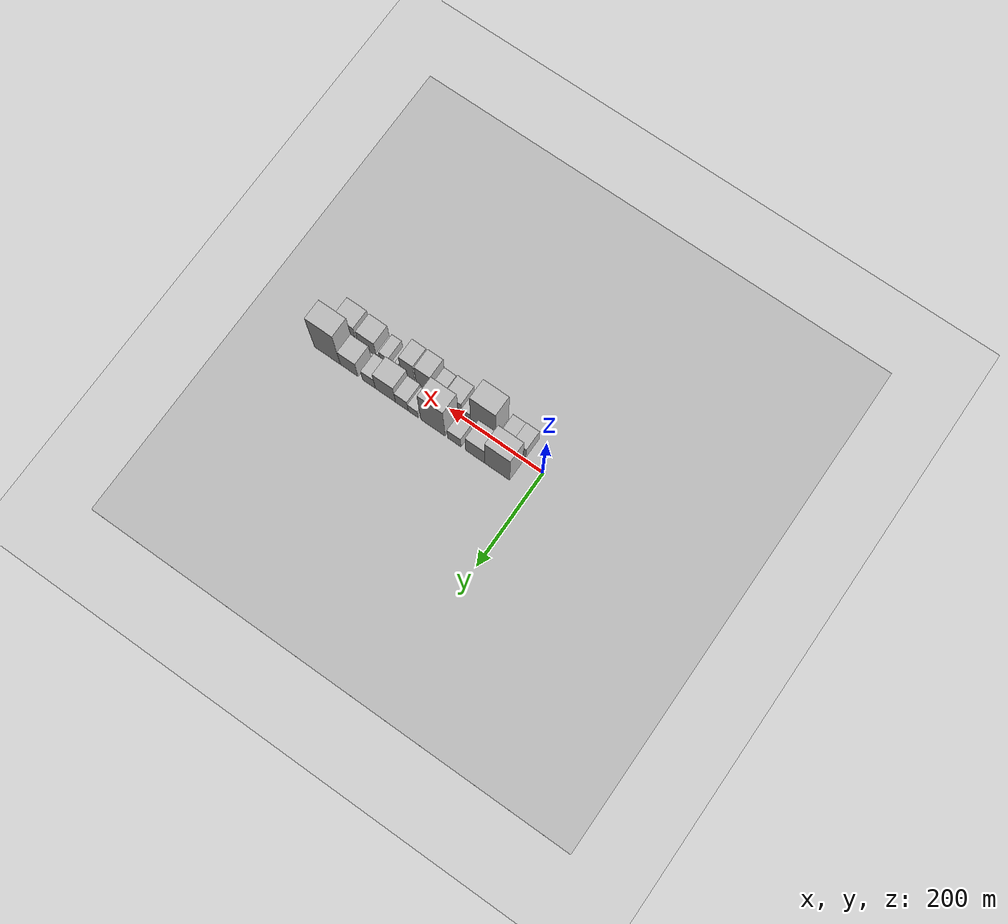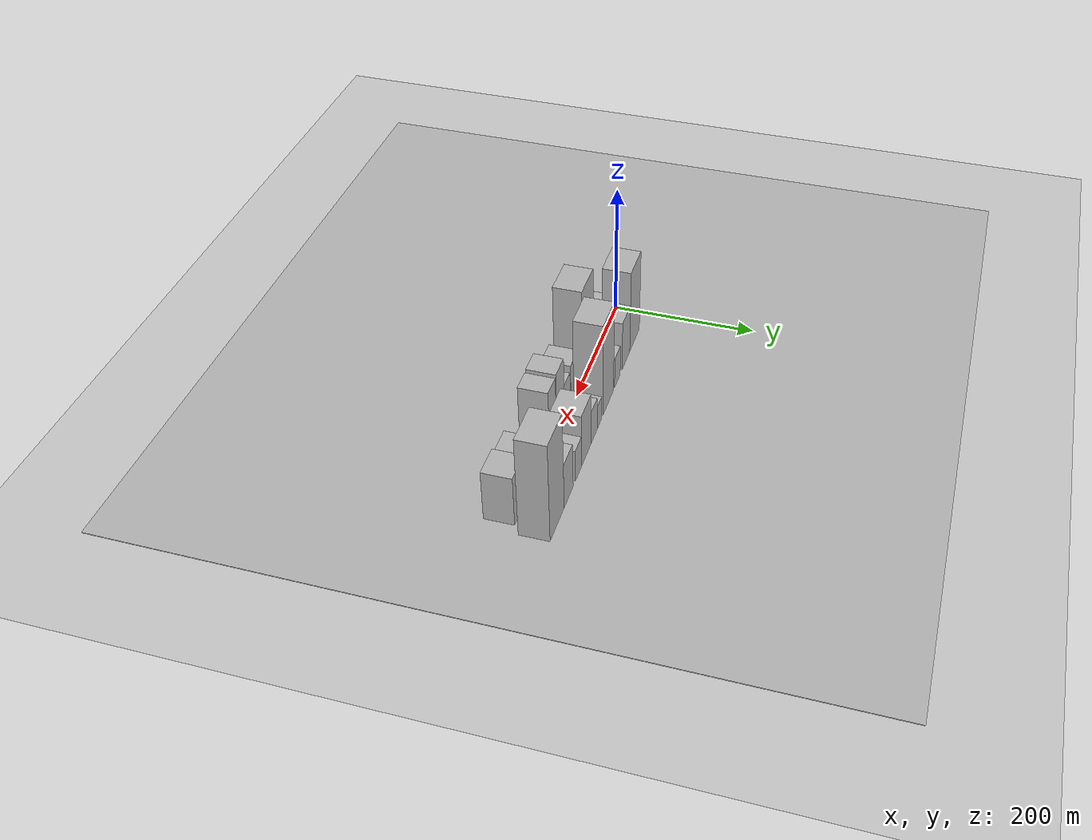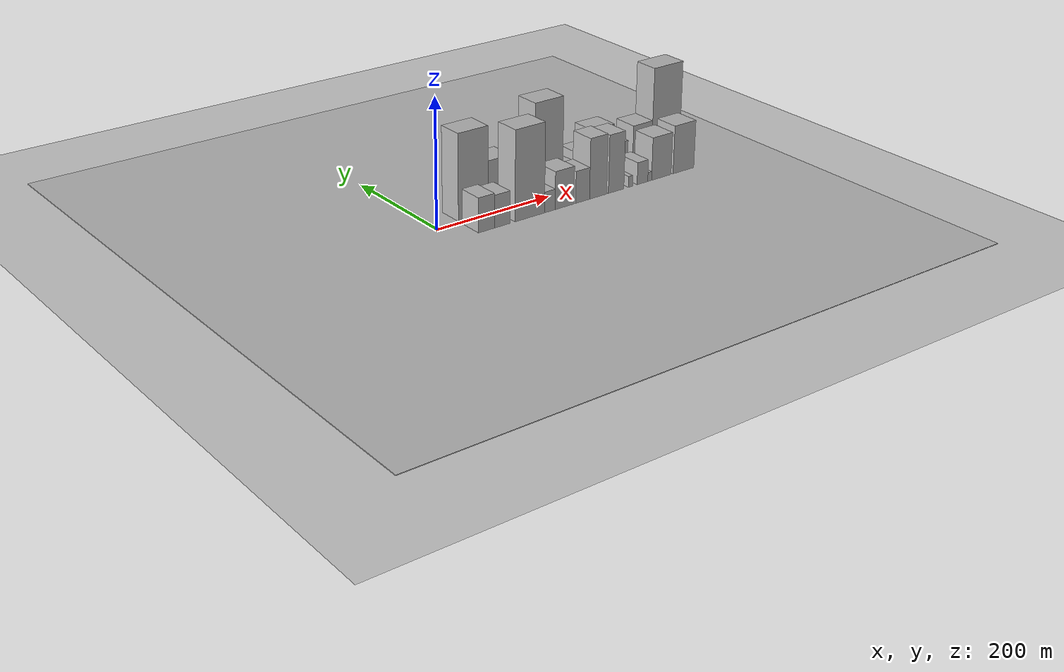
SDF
<?xml version="1.0" encoding="utf-8"?>

<sdf version="1.6">

   <world name="default">

      <gui fullscreen="0">

         <camera name="user_camera">

            <pose>-15 0 4.57585 0 0 0</pose>

            <view_controller>orbit</view_controller>

         </camera>

      </gui>

      <scene>

         <sky>

           <clouds>

             <speed>12</speed>

           </clouds>

         </sky>

         <ambient>0.4 0.4 0.4 1</ambient>

         <background>0.7 0.7 0.7 1</background>

         <shadows>1</shadows>

      </scene>

      <gravity>0 0 -9.8066</gravity>

      <magnetic_field>6e-06 2.3e-05 -4.2e-05</magnetic_field>

      <physics default="0" name="default_physics" type="ode">

         <ode>

            <solver>

               <type>quick</type>

               <iters>10</iters>

               <sor>1.0</sor>

               <use_dynamic_moi_rescaling>0</use_dynamic_moi_rescaling>

            </solver>

            <constraints>

               <cfm>0</cfm>

               <erp>0.2</erp>

               <contact_max_correcting_vel>100</contact_max_correcting_vel>

               <contact_surface_layer>0.001</contact_surface_layer>

            </constraints>

         </ode>

         <max_step_size>0.004</max_step_size>

         <real_time_factor>1</real_time_factor>

         <real_time_update_rate>250</real_time_update_rate>

      </physics>

      <light name="sun" type="directional">

         <cast_shadows>1</cast_shadows>

         <pose>0 0 10 0 0 0</pose>

         <diffuse>0.8 0.8 0.8 1</diffuse>

         <specular>0.2 0.2 0.2 1</specular>

         <attenuation>

            <range>1000</range>

            <constant>0.9</constant>

            <linear>0.01</linear>

            <quadratic>0.001</quadratic>

         </attenuation>

         <direction>-0.5 0.1 -0.9</direction>

      </light>

      <include>

         <name>ground_plane_1</name>

         <uri>model://HANNAS_ground_plane</uri>

         <pose>0 0 0  0 0 0</pose>

      </include>

      <include>

         <name>ground_plane_2</name>

         <uri>model://HANNAS_ground_plane</uri>

         <pose>100 0 0  0 0 0</pose>

      </include>

      <model name="building_1">

         <static>1</static>

         <pose frame="">66.1630 24.5000 0 0.000000 0.000000 1.570796</pose>

         <link name="link">

            <pose frame="">0 0 67.50 0 0 0</pose>

            <collision name="collision">

               <geometry>

                  <box>

                     <size>40.0000 52.3259 135.0000</size>

                  </box>

               </geometry>

               <max_contacts>10</max_contacts>

               <surface>

                  <contact>

                     <ode/>

                  </contact>

                  <bounce/>

                  <friction>

                     <torsional>

                        <ode/>

                     </torsional>

                     <ode/>

                  </friction>

               </surface>

            </collision>

            <visual name="visual">

               <cast_shadows>0</cast_shadows>

               <geometry>

                  <box>

                     <size>40.0000 52.3259 135.0000</size>

                  </box>

               </geometry>

               <material>

                  <script>

                     <uri>model://HANNAS_wall/materials/scripts</uri>

                     <uri>model://HANNAS_wall/materials/textures</uri>

                     <name>vrc/HANNAS_wall</name>

                  </script>

               </material>

            </visual>

            <self_collide>0</self_collide>

            <enable_wind>0</enable_wind>

            <kinematic>0</kinematic>

         </link>

      </model>

      <model name="building_2">

         <static>1</static>

         <pose frame="">112.6693 24.5000 0 0.000000 0.000000 1.570796</pose>

         <link name="link">

            <pose frame="">0 0 40.50 0 0 0</pose>

            <collision name="collision">

               <geometry>

                  <box>

                     <size>40.0000 40.6868 81.0000</size>

                  </box>

               </geometry>

               <max_contacts>10</max_contacts>

               <surface>

                  <contact>

                     <ode/>

                  </contact>

                  <bounce/>

                  <friction>

                     <torsional>

                        <ode/>

                     </torsional>

                     <ode/>

                  </friction>

               </surface>

            </collision>

            <visual name="visual">

               <cast_shadows>0</cast_shadows>

               <geometry>

                  <box>

                     <size>40.0000 40.6868 81.0000</size>

                  </box>

               </geometry>

               <material>

                  <script>

                     <uri>model://HANNAS_wall/materials/scripts</uri>

                     <uri>model://HANNAS_wall/materials/textures</uri>

                     <name>vrc/HANNAS_wall</name>

                  </script>

               </material>

            </visual>

            <self_collide>0</self_collide>

            <enable_wind>0</enable_wind>

            <kinematic>0</kinematic>

         </link>

      </model>

      <model name="building_3">

         <static>1</static>

         <pose frame="">157.3690 24.5000 0 0.000000 0.000000 1.570796</pose>

         <link name="link">

            <pose frame="">0 0 25.50 0 0 0</pose>

            <collision name="collision">

               <geometry>

                  <box>

                     <size>40.0000 28.7124 51.0000</size>

                  </box>

               </geometry>

               <max_contacts>10</max_contacts>

               <surface>

                  <contact>

                     <ode/>

                  </contact>

                  <bounce/>

                  <friction>

                     <torsional>

                        <ode/>

                     </torsional>

                     <ode/>

                  </friction>

               </surface>

            </collision>

            <visual name="visual">

               <cast_shadows>0</cast_shadows>

               <geometry>

                  <box>

                     <size>40.0000 28.7124 51.0000</size>

                  </box>

               </geometry>

               <material>

                  <script>

                     <uri>model://HANNAS_wall/materials/scripts</uri>

                     <uri>model://HANNAS_wall/materials/textures</uri>

                     <name>vrc/HANNAS_wall</name>

                  </script>

               </material>

            </visual>

            <self_collide>0</self_collide>

            <enable_wind>0</enable_wind>

            <kinematic>0</kinematic>

         </link>

      </model>

      <model name="building_4">

         <static>1</static>

         <pose frame="">202.8504 24.5000 0 0.000000 0.000000 1.570796</pose>

         <link name="link">

            <pose frame="">0 0 75.00 0 0 0</pose>

            <collision name="collision">

               <geometry>

                  <box>

                     <size>40.0000 52.2504 150.0000</size>

                  </box>

               </geometry>

               <max_contacts>10</max_contacts>

               <surface>

                  <contact>

                     <ode/>

                  </contact>

                  <bounce/>

                  <friction>

                     <torsional>

                        <ode/>

                     </torsional>

                     <ode/>

                  </friction>

               </surface>

            </collision>

            <visual name="visual">

               <cast_shadows>0</cast_shadows>

               <geometry>

                  <box>

                     <size>40.0000 52.2504 150.0000</size>

                  </box>

               </geometry>

               <material>

                  <script>

                     <uri>model://HANNAS_wall/materials/scripts</uri>

                     <uri>model://HANNAS_wall/materials/textures</uri>

                     <name>vrc/HANNAS_wall</name>

                  </script>

               </material>

            </visual>

            <self_collide>0</self_collide>

            <enable_wind>0</enable_wind>

            <kinematic>0</kinematic>

         </link>

      </model>

      <model name="building_5">

         <static>1</static>

         <pose frame="">245.6008 24.5000 0 0.000000 0.000000 1.570796</pose>

         <link name="link">

            <pose frame="">0 0 19.50 0 0 0</pose>

            <collision name="collision">

               <geometry>

                  <box>

                     <size>40.0000 21.2503 39.0000</size>

                  </box>

               </geometry>

               <max_contacts>10</max_contacts>

               <surface>

                  <contact>

                     <ode/>

                  </contact>

                  <bounce/>

                  <friction>

                     <torsional>

                        <ode/>

                     </torsional>

                     <ode/>

                  </friction>

               </surface>

            </collision>

            <visual name="visual">

               <cast_shadows>0</cast_shadows>

               <geometry>

                  <box>

                     <size>40.0000 21.2503 39.0000</size>

                  </box>

               </geometry>

               <material>

                  <script>

                     <uri>model://HANNAS_wall/materials/scripts</uri>

                     <uri>model://HANNAS_wall/materials/textures</uri>

                     <name>vrc/HANNAS_wall</name>

                  </script>

               </material>

            </visual>

            <self_collide>0</self_collide>

            <enable_wind>0</enable_wind>

            <kinematic>0</kinematic>

         </link>

      </model>

      <model name="building_6">

         <static>1</static>

         <pose frame="">269.9380 24.5000 0 0.000000 0.000000 1.570796</pose>

         <link name="link">

            <pose frame="">0 0 27.00 0 0 0</pose>

            <collision name="collision">

               <geometry>

                  <box>

                     <size>40.0000 27.4241 54.0000</size>

                  </box>

               </geometry>

               <max_contacts>10</max_contacts>

               <surface>

                  <contact>

                     <ode/>

                  </contact>

                  <bounce/>

                  <friction>

                     <torsional>

                        <ode/>

                     </torsional>

                     <ode/>

                  </friction>

               </surface>

            </collision>

            <visual name="visual">

               <cast_shadows>0</cast_shadows>

               <geometry>

                  <box>

                     <size>40.0000 27.4241 54.0000</size>

                  </box>

               </geometry>

               <material>

                  <script>

                     <uri>model://HANNAS_wall/materials/scripts</uri>

                     <uri>model://HANNAS_wall/materials/textures</uri>

                     <name>vrc/HANNAS_wall</name>

                  </script>

               </material>

            </visual>

            <self_collide>0</self_collide>

            <enable_wind>0</enable_wind>

            <kinematic>0</kinematic>

         </link>

      </model>

      <model name="building_7">

         <static>1</static>

         <pose frame="">305.5247 24.5000 0 0.000000 0.000000 1.570796</pose>

         <link name="link">

            <pose frame="">0 0 42.00 0 0 0</pose>

            <collision name="collision">

               <geometry>

                  <box>

                     <size>40.0000 43.7491 84.0000</size>

                  </box>

               </geometry>

               <max_contacts>10</max_contacts>

               <surface>

                  <contact>

                     <ode/>

                  </contact>

                  <bounce/>

                  <friction>

                     <torsional>

                        <ode/>

                     </torsional>

                     <ode/>

                  </friction>

               </surface>

            </collision>

            <visual name="visual">

               <cast_shadows>0</cast_shadows>

               <geometry>

                  <box>

                     <size>40.0000 43.7491 84.0000</size>

                  </box>

               </geometry>

               <material>

                  <script>

                     <uri>model://HANNAS_wall/materials/scripts</uri>

                     <uri>model://HANNAS_wall/materials/textures</uri>

                     <name>vrc/HANNAS_wall</name>

                  </script>

               </material>

            </visual>

            <self_collide>0</self_collide>

            <enable_wind>0</enable_wind>

            <kinematic>0</kinematic>

         </link>

      </model>

      <model name="building_8">

         <static>1</static>

         <pose frame="">341.2905 24.5000 0 0.000000 0.000000 1.570796</pose>

         <link name="link">

            <pose frame="">0 0 25.50 0 0 0</pose>

            <collision name="collision">

               <geometry>

                  <box>

                     <size>40.0000 27.7826 51.0000</size>

                  </box>

               </geometry>

               <max_contacts>10</max_contacts>

               <surface>

                  <contact>

                     <ode/>

                  </contact>

                  <bounce/>

                  <friction>

                     <torsional>

                        <ode/>

                     </torsional>

                     <ode/>

                  </friction>

               </surface>

            </collision>

            <visual name="visual">

               <cast_shadows>0</cast_shadows>

               <geometry>

                  <box>

                     <size>40.0000 27.7826 51.0000</size>

                  </box>

               </geometry>

               <material>

                  <script>

                     <uri>model://HANNAS_wall/materials/scripts</uri>

                     <uri>model://HANNAS_wall/materials/textures</uri>

                     <name>vrc/HANNAS_wall</name>

                  </script>

               </material>

            </visual>

            <self_collide>0</self_collide>

            <enable_wind>0</enable_wind>

            <kinematic>0</kinematic>

         </link>

      </model>

      <model name="building_9">

         <static>1</static>

         <pose frame="">384.2529 24.5000 0 0.000000 0.000000 1.570796</pose>

         <link name="link">

            <pose frame="">0 0 36.00 0 0 0</pose>

            <collision name="collision">

               <geometry>

                  <box>

                     <size>40.0000 38.1422 72.0000</size>

                  </box>

               </geometry>

               <max_contacts>10</max_contacts>

               <surface>

                  <contact>

                     <ode/>

                  </contact>

                  <bounce/>

                  <friction>

                     <torsional>

                        <ode/>

                     </torsional>

                     <ode/>

                  </friction>

               </surface>

            </collision>

            <visual name="visual">

               <cast_shadows>0</cast_shadows>

               <geometry>

                  <box>

                     <size>40.0000 38.1422 72.0000</size>

                  </box>

               </geometry>

               <material>

                  <script>

                     <uri>model://HANNAS_wall/materials/scripts</uri>

                     <uri>model://HANNAS_wall/materials/textures</uri>

                     <name>vrc/HANNAS_wall</name>

                  </script>

               </material>

            </visual>

            <self_collide>0</self_collide>

            <enable_wind>0</enable_wind>

            <kinematic>0</kinematic>

         </link>

      </model>

      <model name="building_10">

         <static>1</static>

         <pose frame="">431.9406 24.5000 0 0.000000 0.000000 1.570796</pose>

         <link name="link">

            <pose frame="">0 0 78.00 0 0 0</pose>

            <collision name="collision">

               <geometry>

                  <box>

                     <size>40.0000 57.2332 156.0000</size>

                  </box>

               </geometry>

               <max_contacts>10</max_contacts>

               <surface>

                  <contact>

                     <ode/>

                  </contact>

                  <bounce/>

                  <friction>

                     <torsional>

                        <ode/>

                     </torsional>

                     <ode/>

                  </friction>

               </surface>

            </collision>

            <visual name="visual">

               <cast_shadows>0</cast_shadows>

               <geometry>

                  <box>

                     <size>40.0000 57.2332 156.0000</size>

                  </box>

               </geometry>

               <material>

                  <script>

                     <uri>model://HANNAS_wall/materials/scripts</uri>

                     <uri>model://HANNAS_wall/materials/textures</uri>

                     <name>vrc/HANNAS_wall</name>

                  </script>

               </material>

            </visual>

            <self_collide>0</self_collide>

            <enable_wind>0</enable_wind>

            <kinematic>0</kinematic>

         </link>

      </model>

      <model name="building_11">

         <static>1</static>

         <pose frame="">53.9799 -24.5000 0 0.000000 0.000000 1.570796</pose>

         <link name="link">

            <pose frame="">0 0 27.00 0 0 0</pose>

            <collision name="collision">

               <geometry>

                  <box>

                     <size>40.0000 27.9597 54.0000</size>

                  </box>

               </geometry>

               <max_contacts>10</max_contacts>

               <surface>

                  <contact>

                     <ode/>

                  </contact>

                  <bounce/>

                  <friction>

                     <torsional>

                        <ode/>

                     </torsional>

                     <ode/>

                  </friction>

               </surface>

            </collision>

            <visual name="visual">

               <cast_shadows>0</cast_shadows>

               <geometry>

                  <box>

                     <size>40.0000 27.9597 54.0000</size>

                  </box>

               </geometry>

               <material>

                  <script>

                     <uri>model://HANNAS_wall/materials/scripts</uri>

                     <uri>model://HANNAS_wall/materials/textures</uri>

                     <name>vrc/HANNAS_wall</name>

                  </script>

               </material>

            </visual>

            <self_collide>0</self_collide>

            <enable_wind>0</enable_wind>

            <kinematic>0</kinematic>

         </link>

      </model>

      <model name="building_12">

         <static>1</static>

         <pose frame="">81.5833 -24.5000 0 0.000000 0.000000 1.570796</pose>

         <link name="link">

            <pose frame="">0 0 25.50 0 0 0</pose>

            <collision name="collision">

               <geometry>

                  <box>

                     <size>40.0000 27.2472 51.0000</size>

                  </box>

               </geometry>

               <max_contacts>10</max_contacts>

               <surface>

                  <contact>

                     <ode/>

                  </contact>

                  <bounce/>

                  <friction>

                     <torsional>

                        <ode/>

                     </torsional>

                     <ode/>

                  </friction>

               </surface>

            </collision>

            <visual name="visual">

               <cast_shadows>0</cast_shadows>

               <geometry>

                  <box>

                     <size>40.0000 27.2472 51.0000</size>

                  </box>

               </geometry>

               <material>

                  <script>

                     <uri>model://HANNAS_wall/materials/scripts</uri>

                     <uri>model://HANNAS_wall/materials/textures</uri>

                     <name>vrc/HANNAS_wall</name>

                  </script>

               </material>

            </visual>

            <self_collide>0</self_collide>

            <enable_wind>0</enable_wind>

            <kinematic>0</kinematic>

         </link>

      </model>

      <model name="building_13">

         <static>1</static>

         <pose frame="">130.8070 -24.5000 0 0.000000 0.000000 1.570796</pose>

         <link name="link">

            <pose frame="">0 0 70.50 0 0 0</pose>

            <collision name="collision">

               <geometry>

                  <box>

                     <size>40.0000 53.2002 141.0000</size>

                  </box>

               </geometry>

               <max_contacts>10</max_contacts>

               <surface>

                  <contact>

                     <ode/>

                  </contact>

                  <bounce/>

                  <friction>

                     <torsional>

                        <ode/>

                     </torsional>

                     <ode/>

                  </friction>

               </surface>

            </collision>

            <visual name="visual">

               <cast_shadows>0</cast_shadows>

               <geometry>

                  <box>

                     <size>40.0000 53.2002 141.0000</size>

                  </box>

               </geometry>

               <material>

                  <script>

                     <uri>model://HANNAS_wall/materials/scripts</uri>

                     <uri>model://HANNAS_wall/materials/textures</uri>

                     <name>vrc/HANNAS_wall</name>

                  </script>

               </material>

            </visual>

            <self_collide>0</self_collide>

            <enable_wind>0</enable_wind>

            <kinematic>0</kinematic>

         </link>

      </model>

      <model name="building_14">

         <static>1</static>

         <pose frame="">167.0720 -24.5000 0 0.000000 0.000000 1.570796</pose>

         <link name="link">

            <pose frame="">0 0 16.50 0 0 0</pose>

            <collision name="collision">

               <geometry>

                  <box>

                     <size>40.0000 19.3299 33.0000</size>

                  </box>

               </geometry>

               <max_contacts>10</max_contacts>

               <surface>

                  <contact>

                     <ode/>

                  </contact>

                  <bounce/>

                  <friction>

                     <torsional>

                        <ode/>

                     </torsional>

                     <ode/>

                  </friction>

               </surface>

            </collision>

            <visual name="visual">

               <cast_shadows>0</cast_shadows>

               <geometry>

                  <box>

                     <size>40.0000 19.3299 33.0000</size>

                  </box>

               </geometry>

               <material>

                  <script>

                     <uri>model://HANNAS_wall/materials/scripts</uri>

                     <uri>model://HANNAS_wall/materials/textures</uri>

                     <name>vrc/HANNAS_wall</name>

                  </script>

               </material>

            </visual>

            <self_collide>0</self_collide>

            <enable_wind>0</enable_wind>

            <kinematic>0</kinematic>

         </link>

      </model>

      <model name="building_15">

         <static>1</static>

         <pose frame="">194.2468 -24.5000 0 0.000000 0.000000 1.570796</pose>

         <link name="link">

            <pose frame="">0 0 30.00 0 0 0</pose>

            <collision name="collision">

               <geometry>

                  <box>

                     <size>40.0000 35.0196 60.0000</size>

                  </box>

               </geometry>

               <max_contacts>10</max_contacts>

               <surface>

                  <contact>

                     <ode/>

                  </contact>

                  <bounce/>

                  <friction>

                     <torsional>

                        <ode/>

                     </torsional>

                     <ode/>

                  </friction>

               </surface>

            </collision>

            <visual name="visual">

               <cast_shadows>0</cast_shadows>

               <geometry>

                  <box>

                     <size>40.0000 35.0196 60.0000</size>

                  </box>

               </geometry>

               <material>

                  <script>

                     <uri>model://HANNAS_wall/materials/scripts</uri>

                     <uri>model://HANNAS_wall/materials/textures</uri>

                     <name>vrc/HANNAS_wall</name>

                  </script>

               </material>

            </visual>

            <self_collide>0</self_collide>

            <enable_wind>0</enable_wind>

            <kinematic>0</kinematic>

         </link>

      </model>

      <model name="building_16">

         <static>1</static>

         <pose frame="">227.8374 -24.5000 0 0.000000 0.000000 1.570796</pose>

         <link name="link">

            <pose frame="">0 0 25.50 0 0 0</pose>

            <collision name="collision">

               <geometry>

                  <box>

                     <size>40.0000 26.1618 51.0000</size>

                  </box>

               </geometry>

               <max_contacts>10</max_contacts>

               <surface>

                  <contact>

                     <ode/>

                  </contact>

                  <bounce/>

                  <friction>

                     <torsional>

                        <ode/>

                     </torsional>

                     <ode/>

                  </friction>

               </surface>

            </collision>

            <visual name="visual">

               <cast_shadows>0</cast_shadows>

               <geometry>

                  <box>

                     <size>40.0000 26.1618 51.0000</size>

                  </box>

               </geometry>

               <material>

                  <script>

                     <uri>model://HANNAS_wall/materials/scripts</uri>

                     <uri>model://HANNAS_wall/materials/textures</uri>

                     <name>vrc/HANNAS_wall</name>

                  </script>

               </material>

            </visual>

            <self_collide>0</self_collide>

            <enable_wind>0</enable_wind>

            <kinematic>0</kinematic>

         </link>

      </model>

      <model name="building_17">

         <static>1</static>

         <pose frame="">257.3687 -24.5000 0 0.000000 0.000000 1.570796</pose>

         <link name="link">

            <pose frame="">0 0 48.00 0 0 0</pose>

            <collision name="collision">

               <geometry>

                  <box>

                     <size>40.0000 32.9008 96.0000</size>

                  </box>

               </geometry>

               <max_contacts>10</max_contacts>

               <surface>

                  <contact>

                     <ode/>

                  </contact>

                  <bounce/>

                  <friction>

                     <torsional>

                        <ode/>

                     </torsional>

                     <ode/>

                  </friction>

               </surface>

            </collision>

            <visual name="visual">

               <cast_shadows>0</cast_shadows>

               <geometry>

                  <box>

                     <size>40.0000 32.9008 96.0000</size>

                  </box>

               </geometry>

               <material>

                  <script>

                     <uri>model://HANNAS_wall/materials/scripts</uri>

                     <uri>model://HANNAS_wall/materials/textures</uri>

                     <name>vrc/HANNAS_wall</name>

                  </script>

               </material>

            </visual>

            <self_collide>0</self_collide>

            <enable_wind>0</enable_wind>

            <kinematic>0</kinematic>

         </link>

      </model>

      <model name="building_18">

         <static>1</static>

         <pose frame="">291.8388 -24.5000 0 0.000000 0.000000 1.570796</pose>

         <link name="link">

            <pose frame="">0 0 46.50 0 0 0</pose>

            <collision name="collision">

               <geometry>

                  <box>

                     <size>40.0000 30.0394 93.0000</size>

                  </box>

               </geometry>

               <max_contacts>10</max_contacts>

               <surface>

                  <contact>

                     <ode/>

                  </contact>

                  <bounce/>

                  <friction>

                     <torsional>

                        <ode/>

                     </torsional>

                     <ode/>

                  </friction>

               </surface>

            </collision>

            <visual name="visual">

               <cast_shadows>0</cast_shadows>

               <geometry>

                  <box>

                     <size>40.0000 30.0394 93.0000</size>

                  </box>

               </geometry>

               <material>

                  <script>

                     <uri>model://HANNAS_wall/materials/scripts</uri>

                     <uri>model://HANNAS_wall/materials/textures</uri>

                     <name>vrc/HANNAS_wall</name>

                  </script>

               </material>

            </visual>

            <self_collide>0</self_collide>

            <enable_wind>0</enable_wind>

            <kinematic>0</kinematic>

         </link>

      </model>

      <model name="building_19">

         <static>1</static>

         <pose frame="">319.8371 -24.5000 0 0.000000 0.000000 1.570796</pose>

         <link name="link">

            <pose frame="">0 0 9.00 0 0 0</pose>

            <collision name="collision">

               <geometry>

                  <box>

                     <size>40.0000 7.9570 18.0000</size>

                  </box>

               </geometry>

               <max_contacts>10</max_contacts>

               <surface>

                  <contact>

                     <ode/>

                  </contact>

                  <bounce/>

                  <friction>

                     <torsional>

                        <ode/>

                     </torsional>

                     <ode/>

                  </friction>

               </surface>

            </collision>

            <visual name="visual">

               <cast_shadows>0</cast_shadows>

               <geometry>

                  <box>

                     <size>40.0000 7.9570 18.0000</size>

                  </box>

               </geometry>

               <material>

                  <script>

                     <uri>model://HANNAS_wall/materials/scripts</uri>

                     <uri>model://HANNAS_wall/materials/textures</uri>

                     <name>vrc/HANNAS_wall</name>

                  </script>

               </material>

            </visual>

            <self_collide>0</self_collide>

            <enable_wind>0</enable_wind>

            <kinematic>0</kinematic>

         </link>

      </model>

      <model name="building_20">

         <static>1</static>

         <pose frame="">343.3180 -24.5000 0 0.000000 0.000000 1.570796</pose>

         <link name="link">

            <pose frame="">0 0 18.00 0 0 0</pose>

            <collision name="collision">

               <geometry>

                  <box>

                     <size>40.0000 21.0048 36.0000</size>

                  </box>

               </geometry>

               <max_contacts>10</max_contacts>

               <surface>

                  <contact>

                     <ode/>

                  </contact>

                  <bounce/>

                  <friction>

                     <torsional>

                        <ode/>

                     </torsional>

                     <ode/>

                  </friction>

               </surface>

            </collision>

            <visual name="visual">

               <cast_shadows>0</cast_shadows>

               <geometry>

                  <box>

                     <size>40.0000 21.0048 36.0000</size>

                  </box>

               </geometry>

               <material>

                  <script>

                     <uri>model://HANNAS_wall/materials/scripts</uri>

                     <uri>model://HANNAS_wall/materials/textures</uri>

                     <name>vrc/HANNAS_wall</name>

                  </script>

               </material>

            </visual>

            <self_collide>0</self_collide>

            <enable_wind>0</enable_wind>

            <kinematic>0</kinematic>

         </link>

      </model>

      <model name="building_21">

         <static>1</static>

         <pose frame="">357.5585 -24.5000 0 0.000000 0.000000 1.570796</pose>

         <link name="link">

            <pose frame="">0 0 7.50 0 0 0</pose>

            <collision name="collision">

               <geometry>

                  <box>

                     <size>40.0000 7.4762 15.0000</size>

                  </box>

               </geometry>

               <max_contacts>10</max_contacts>

               <surface>

                  <contact>

                     <ode/>

                  </contact>

                  <bounce/>

                  <friction>

                     <torsional>

                        <ode/>

                     </torsional>

                     <ode/>

                  </friction>

               </surface>

            </collision>

            <visual name="visual">

               <cast_shadows>0</cast_shadows>

               <geometry>

                  <box>

                     <size>40.0000 7.4762 15.0000</size>

                  </box>

               </geometry>

               <material>

                  <script>

                     <uri>model://HANNAS_wall/materials/scripts</uri>

                     <uri>model://HANNAS_wall/materials/textures</uri>

                     <name>vrc/HANNAS_wall</name>

                  </script>

               </material>

            </visual>

            <self_collide>0</self_collide>

            <enable_wind>0</enable_wind>

            <kinematic>0</kinematic>

         </link>

      </model>

      <model name="building_22">

         <static>1</static>

         <pose frame="">380.8892 -24.5000 0 0.000000 0.000000 1.570796</pose>

         <link name="link">

            <pose frame="">0 0 34.50 0 0 0</pose>

            <collision name="collision">

               <geometry>

                  <box>

                     <size>40.0000 39.1854 69.0000</size>

                  </box>

               </geometry>

               <max_contacts>10</max_contacts>

               <surface>

                  <contact>

                     <ode/>

                  </contact>

                  <bounce/>

                  <friction>

                     <torsional>

                        <ode/>

                     </torsional>

                     <ode/>

                  </friction>

               </surface>

            </collision>

            <visual name="visual">

               <cast_shadows>0</cast_shadows>

               <geometry>

                  <box>

                     <size>40.0000 39.1854 69.0000</size>

                  </box>

               </geometry>

               <material>

                  <script>

                     <uri>model://HANNAS_wall/materials/scripts</uri>

                     <uri>model://HANNAS_wall/materials/textures</uri>

                     <name>vrc/HANNAS_wall</name>

                  </script>

               </material>

            </visual>

            <self_collide>0</self_collide>

            <enable_wind>0</enable_wind>

            <kinematic>0</kinematic>

         </link>

      </model>

      <model name="building_23">

         <static>1</static>

         <pose frame="">425.6633 -24.5000 0 0.000000 0.000000 1.570796</pose>

         <link name="link">

            <pose frame="">0 0 39.00 0 0 0</pose>

            <collision name="collision">

               <geometry>

                  <box>

                     <size>40.0000 42.3628 78.0000</size>

                  </box>

               </geometry>

               <max_contacts>10</max_contacts>

               <surface>

                  <contact>

                     <ode/>

                  </contact>

                  <bounce/>

                  <friction>

                     <torsional>

                        <ode/>

                     </torsional>

                     <ode/>

                  </friction>

               </surface>

            </collision>

            <visual name="visual">

               <cast_shadows>0</cast_shadows>

               <geometry>

                  <box>

                     <size>40.0000 42.3628 78.0000</size>

                  </box>

               </geometry>

               <material>

                  <script>

                     <uri>model://HANNAS_wall/materials/scripts</uri>

                     <uri>model://HANNAS_wall/materials/textures</uri>

                     <name>vrc/HANNAS_wall</name>

                  </script>

               </material>

            </visual>

            <self_collide>0</self_collide>

            <enable_wind>0</enable_wind>

            <kinematic>0</kinematic>

         </link>

      </model>

   </world>

</sdf>

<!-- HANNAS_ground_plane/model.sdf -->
<sdf version="1.4">
<model name="HANNAS_ground_plane">
  <static>true</static>
    <link name="link">
      <collision name="collision">
        <geometry>
          <plane>
            <normal>0 0 1</normal>
            <size>1000 1000</size>
          </plane>
        </geometry>
        <surface>
          <friction>
            <ode>
              <mu>100</mu>
              <mu2>50</mu2>
            </ode>
          </friction>
        </surface>
      </collision>
      <visual name="visual">
        <cast_shadows>false</cast_shadows>
        <geometry>
          <plane>
            <normal>0 0 1</normal>
            <size>1000 1000</size>
          </plane>
        </geometry>
        <material>
          <script>
            <uri>model://HANNAS_ground_plane/materials/scripts/HANNAS_ground_plane.material</uri>
	    <uri>model://HANNAS_ground_plane/materials/textures</uri>
            <name>HANNASGroundPlane/Image</name>
          </script>
        </material>
      </visual>
    </link>
  </model>
</sdf>
